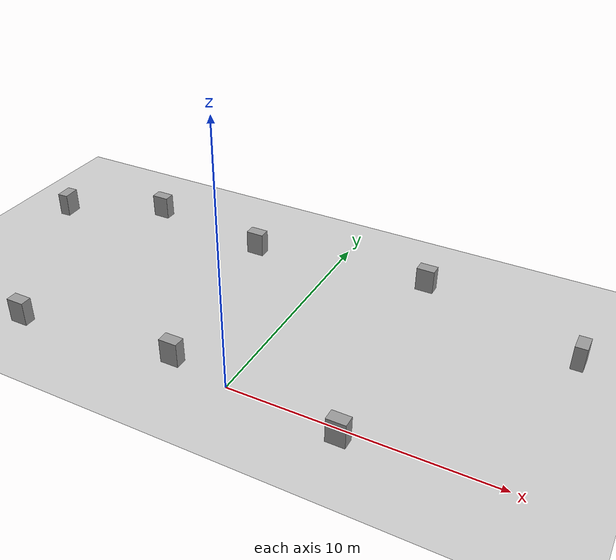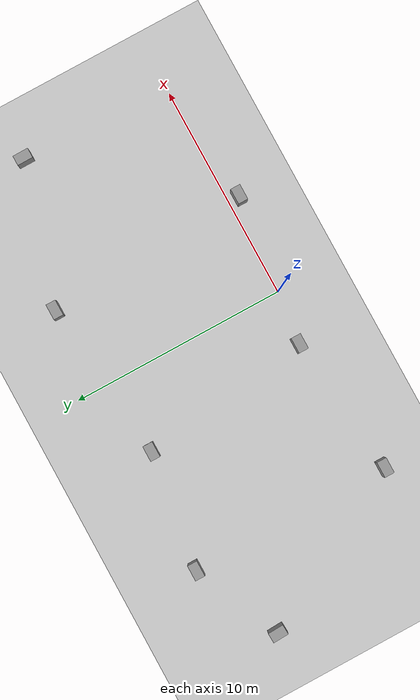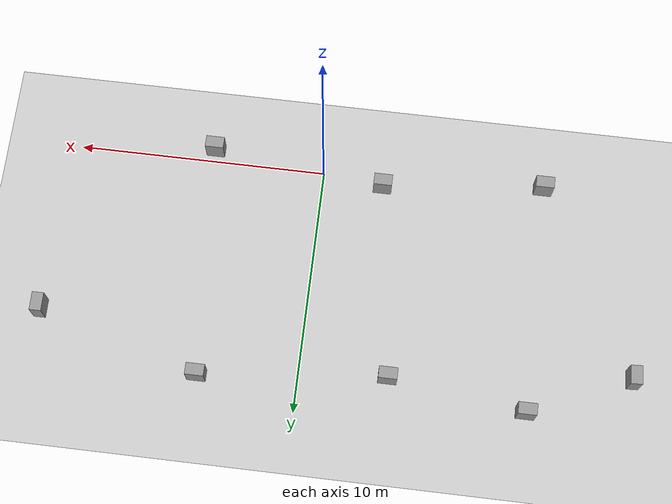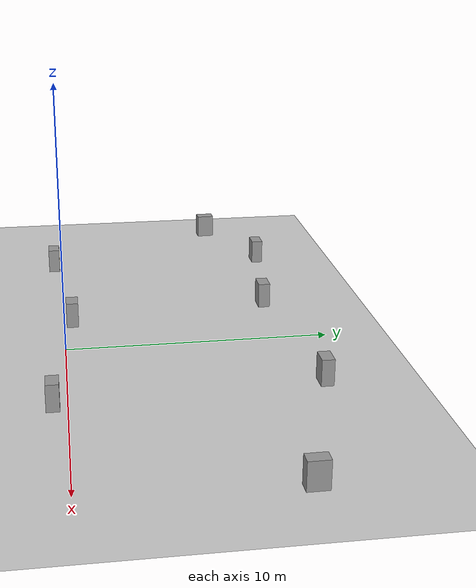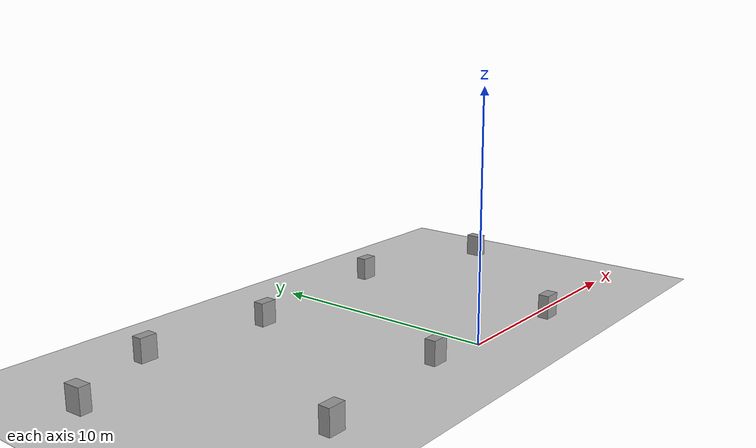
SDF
<sdf version="1.6">
 <world name="track_levine">
  <scene><ambient>0.5 0.5 0.5 1</ambient><shadows>0</shadows><background>0.7 0.7 0.7 1</background></scene>
  <light name="sun" type="directional">
   <pose>0 0 10 0 -0 0</pose>
   <diffuse>0.8 0.8 0.8 1</diffuse>
   <specular>0.1 0.1 0.1 1</specular>
   <attenuation>
    <range>1000</range>
    <constant>0.9</constant>
    <linear>0.01</linear>
    <quadratic>0.001</quadratic>
   </attenuation>
   <direction>-0.5 0.5 -1</direction>
  </light>
  <light name="Light 1" type="point">
   <pose>0 0 15 0 -0 0</pose>
   <diffuse>0.9 0.9 0.9 1</diffuse>
   <specular>0.1 0.1 0.1 1</specular>
   <attenuation>
    <constant>0.5</constant>
    <linear>0.01</linear>
    <quadratic>0</quadratic>
    <range>50</range>
   </attenuation>
   <direction>0 0 -1</direction>
   <cast_shadows>0</cast_shadows>
  </light>
  <model name="ground_plane">
   <static>1</static>
   <link name="link">
    <collision name="collision">
     <geometry><plane><normal>0 0 1</normal><size>150 150</size></plane></geometry>
     <surface><friction><ode><mu>100</mu><mu2>50</mu2></ode></friction></surface>
    </collision>
    <visual name="visual">
     <cast_shadows>0</cast_shadows>
     <geometry><plane><normal>0 0 1</normal><size>150 150</size></plane></geometry>
     <material>
      <script><uri>file://media/materials/scripts/gazebo.material</uri><name>Gazebo/Grey</name></script>
     </material>
    </visual>
   </link>
  </model>
  <gravity>0 0 -9.8</gravity>
  <magnetic_field>6e-06 2.3e-05 -4.2e-05</magnetic_field>
  <atmosphere type="adiabatic"/>
  <physics name="default_physics" default="0" type="ode">
   <max_step_size>0.001</max_step_size>
   <real_time_factor>1</real_time_factor>
   <real_time_update_rate>1000</real_time_update_rate>
  </physics>
  <spherical_coordinates>
   <surface_model>EARTH_WGS84</surface_model>
   <latitude_deg>0</latitude_deg>
   <longitude_deg>0</longitude_deg>
   <elevation>0</elevation>
   <heading_deg>0</heading_deg>
  </spherical_coordinates>
  <model name="unit_box_0_clone_clone_0">
   <link name="link">
    <inertial>
     <mass>1.01857</mass>
     <inertia>
      <ixx>0.172942</ixx>
      <ixy>0</ixy>
      <ixz>0</ixz>
      <iyy>0.169761</iyy>
      <iyz>0</iyz>
      <izz>0.172942</izz>
     </inertia>
    </inertial>
    <visual name="visual">
     <geometry><box><size>0.735947 0.462948 1</size></box></geometry>
     <material>
      <script><name>Gazebo/Grey</name><uri>file://media/materials/scripts/gazebo.material</uri></script>
      <ambient>0.3 0.3 0.3 1</ambient>
      <diffuse>0.7 0.7 0.7 1</diffuse>
      <specular>0.01 0.01 0.01 1</specular>
      <emissive>0 0 0 1</emissive>
     </material>
    </visual>
    <collision name="collision">
     <geometry><box><size>0.735947 0.462948 1</size></box></geometry>
     <surface>
      <friction>
       <ode><mu>1</mu><mu2>1</mu2><fdir1>0 0 0</fdir1><slip1>0</slip1><slip2>0</slip2></ode>
       <torsional>
        <coefficient>1</coefficient>
        <patch_radius>0</patch_radius>
        <surface_radius>0</surface_radius>
        <use_patch_radius>1</use_patch_radius>
        <ode><slip>0</slip></ode>
       </torsional>
      </friction>
      <bounce><restitution_coefficient>0</restitution_coefficient><threshold>1e+06</threshold></bounce>
      <contact>
       <collide_without_contact>0</collide_without_contact>
       <collide_without_contact_bitmask>1</collide_without_contact_bitmask>
       <collide_bitmask>1</collide_bitmask>
       <ode>
        <soft_cfm>0</soft_cfm>
        <soft_erp>0.2</soft_erp>
        <kp>1e+13</kp>
        <kd>1</kd>
        <max_vel>0.01</max_vel>
        <min_depth>0</min_depth>
       </ode>
       <bullet>
        <split_impulse>1</split_impulse>
        <split_impulse_penetration_threshold>-0.01</split_impulse_penetration_threshold>
        <soft_cfm>0</soft_cfm>
        <soft_erp>0.2</soft_erp>
        <kp>1e+13</kp>
        <kd>1</kd>
       </bullet>
      </contact>
     </surface>
    </collision>
   </link>
   <static>0</static>
   <pose>-8.91728 8.95531 0.5 0 0 -4.1e-05</pose>
  </model>
  <model name="unit_box_0_clone_clone_0_clone">
   <link name="link">
    <inertial>
     <mass>1.01857</mass>
     <inertia>
      <ixx>0.172942</ixx>
      <ixy>0</ixy>
      <ixz>0</ixz>
      <iyy>0.169761</iyy>
      <iyz>0</iyz>
      <izz>0.172942</izz>
     </inertia>
    </inertial>
    <visual name="visual">
     <geometry><box><size>0.735947 0.462948 1</size></box></geometry>
     <material>
      <script><name>Gazebo/Grey</name><uri>file://media/materials/scripts/gazebo.material</uri></script>
      <ambient>0.3 0.3 0.3 1</ambient>
      <diffuse>0.7 0.7 0.7 1</diffuse>
      <specular>0.01 0.01 0.01 1</specular>
      <emissive>0 0 0 1</emissive>
     </material>
    </visual>
    <collision name="collision">
     <geometry><box><size>0.735947 0.462948 1</size></box></geometry>
     <surface>
      <friction>
       <ode><mu>1</mu><mu2>1</mu2><fdir1>0 0 0</fdir1><slip1>0</slip1><slip2>0</slip2></ode>
       <torsional>
        <coefficient>1</coefficient>
        <patch_radius>0</patch_radius>
        <surface_radius>0</surface_radius>
        <use_patch_radius>1</use_patch_radius>
        <ode><slip>0</slip></ode>
       </torsional>
      </friction>
      <bounce><restitution_coefficient>0</restitution_coefficient><threshold>1e+06</threshold></bounce>
      <contact>
       <collide_without_contact>0</collide_without_contact>
       <collide_without_contact_bitmask>1</collide_without_contact_bitmask>
       <collide_bitmask>1</collide_bitmask>
       <ode>
        <soft_cfm>0</soft_cfm>
        <soft_erp>0.2</soft_erp>
        <kp>1e+13</kp>
        <kd>1</kd>
        <max_vel>0.01</max_vel>
        <min_depth>0</min_depth>
       </ode>
       <bullet>
        <split_impulse>1</split_impulse>
        <split_impulse_penetration_threshold>-0.01</split_impulse_penetration_threshold>
        <soft_cfm>0</soft_cfm>
        <soft_erp>0.2</soft_erp>
        <kp>1e+13</kp>
        <kd>1</kd>
       </bullet>
      </contact>
     </surface>
    </collision>
   </link>
   <static>0</static>
   <pose>4.51127 -0.497247 0.499996 5e-06 -8e-06 9.5e-05</pose>
  </model>
  <model name="unit_box_0_clone_clone_0_clone_clone">
   <link name="link">
    <inertial>
     <mass>1.01857</mass>
     <inertia>
      <ixx>0.172942</ixx>
      <ixy>0</ixy>
      <ixz>0</ixz>
      <iyy>0.169761</iyy>
      <iyz>0</iyz>
      <izz>0.172942</izz>
     </inertia>
    </inertial>
    <visual name="visual">
     <geometry><box><size>0.735947 0.462948 1</size></box></geometry>
     <material>
      <script><name>Gazebo/Grey</name><uri>file://media/materials/scripts/gazebo.material</uri></script>
      <ambient>0.3 0.3 0.3 1</ambient>
      <diffuse>0.7 0.7 0.7 1</diffuse>
      <specular>0.01 0.01 0.01 1</specular>
      <emissive>0 0 0 1</emissive>
     </material>
    </visual>
    <collision name="collision">
     <geometry><box><size>0.735947 0.462948 1</size></box></geometry>
     <surface>
      <friction>
       <ode><mu>1</mu><mu2>1</mu2><fdir1>0 0 0</fdir1><slip1>0</slip1><slip2>0</slip2></ode>
       <torsional>
        <coefficient>1</coefficient>
        <patch_radius>0</patch_radius>
        <surface_radius>0</surface_radius>
        <use_patch_radius>1</use_patch_radius>
        <ode><slip>0</slip></ode>
       </torsional>
      </friction>
      <bounce><restitution_coefficient>0</restitution_coefficient><threshold>1e+06</threshold></bounce>
      <contact>
       <collide_without_contact>0</collide_without_contact>
       <collide_without_contact_bitmask>1</collide_without_contact_bitmask>
       <collide_bitmask>1</collide_bitmask>
       <ode>
        <soft_cfm>0</soft_cfm>
        <soft_erp>0.2</soft_erp>
        <kp>1e+13</kp>
        <kd>1</kd>
        <max_vel>0.01</max_vel>
        <min_depth>0</min_depth>
       </ode>
       <bullet>
        <split_impulse>1</split_impulse>
        <split_impulse_penetration_threshold>-0.01</split_impulse_penetration_threshold>
        <soft_cfm>0</soft_cfm>
        <soft_erp>0.2</soft_erp>
        <kp>1e+13</kp>
        <kd>1</kd>
       </bullet>
      </contact>
     </surface>
    </collision>
   </link>
   <static>0</static>
   <pose>3.92268 8.95043 0.499996 5e-06 -8e-06 8.3e-05</pose>
  </model>
  <model name="unit_box_0_clone_clone_0_clone_clone_clone">
   <link name="link">
    <inertial>
     <mass>1.01857</mass>
     <inertia>
      <ixx>0.172942</ixx>
      <ixy>0</ixy>
      <ixz>0</ixz>
      <iyy>0.169761</iyy>
      <iyz>0</iyz>
      <izz>0.172942</izz>
     </inertia>
    </inertial>
    <visual name="visual">
     <geometry><box><size>0.735947 0.462948 1</size></box></geometry>
     <material>
      <script><name>Gazebo/Grey</name><uri>file://media/materials/scripts/gazebo.material</uri></script>
      <ambient>0.3 0.3 0.3 1</ambient>
      <diffuse>0.7 0.7 0.7 1</diffuse>
      <specular>0.01 0.01 0.01 1</specular>
      <emissive>0 0 0 1</emissive>
     </material>
    </visual>
    <collision name="collision">
     <geometry><box><size>0.735947 0.462948 1</size></box></geometry>
     <surface>
      <friction>
       <ode><mu>1</mu><mu2>1</mu2><fdir1>0 0 0</fdir1><slip1>0</slip1><slip2>0</slip2></ode>
       <torsional>
        <coefficient>1</coefficient>
        <patch_radius>0</patch_radius>
        <surface_radius>0</surface_radius>
        <use_patch_radius>1</use_patch_radius>
        <ode><slip>0</slip></ode>
       </torsional>
      </friction>
      <bounce><restitution_coefficient>0</restitution_coefficient><threshold>1e+06</threshold></bounce>
      <contact>
       <collide_without_contact>0</collide_without_contact>
       <collide_without_contact_bitmask>1</collide_without_contact_bitmask>
       <collide_bitmask>1</collide_bitmask>
       <ode>
        <soft_cfm>0</soft_cfm>
        <soft_erp>0.2</soft_erp>
        <kp>1e+13</kp>
        <kd>1</kd>
        <max_vel>0.01</max_vel>
        <min_depth>0</min_depth>
       </ode>
       <bullet>
        <split_impulse>1</split_impulse>
        <split_impulse_penetration_threshold>-0.01</split_impulse_penetration_threshold>
        <soft_cfm>0</soft_cfm>
        <soft_erp>0.2</soft_erp>
        <kp>1e+13</kp>
        <kd>1</kd>
       </bullet>
      </contact>
     </surface>
    </collision>
   </link>
   <static>0</static>
   <pose>-3.48307 8.19626 0.499999 3e-06 -0 -2.7e-05</pose>
  </model>
  <model name="unit_box_0_clone_clone_0_clone_clone_clone_0">
   <link name="link">
    <inertial>
     <mass>1.01857</mass>
     <inertia>
      <ixx>0.172942</ixx>
      <ixy>0</ixy>
      <ixz>0</ixz>
      <iyy>0.169761</iyy>
      <iyz>0</iyz>
      <izz>0.172942</izz>
     </inertia>
    </inertial>
    <visual name="visual">
     <geometry><box><size>0.735947 0.462948 1</size></box></geometry>
     <material>
      <script><name>Gazebo/Grey</name><uri>file://media/materials/scripts/gazebo.material</uri></script>
      <ambient>0.3 0.3 0.3 1</ambient>
      <diffuse>0.7 0.7 0.7 1</diffuse>
      <specular>0.01 0.01 0.01 1</specular>
      <emissive>0 0 0 1</emissive>
     </material>
    </visual>
    <collision name="collision">
     <geometry><box><size>0.735947 0.462948 1</size></box></geometry>
     <surface>
      <friction>
       <ode><mu>1</mu><mu2>1</mu2><fdir1>0 0 0</fdir1><slip1>0</slip1><slip2>0</slip2></ode>
       <torsional>
        <coefficient>1</coefficient>
        <patch_radius>0</patch_radius>
        <surface_radius>0</surface_radius>
        <use_patch_radius>1</use_patch_radius>
        <ode><slip>0</slip></ode>
       </torsional>
      </friction>
      <bounce><restitution_coefficient>0</restitution_coefficient><threshold>1e+06</threshold></bounce>
      <contact>
       <collide_without_contact>0</collide_without_contact>
       <collide_without_contact_bitmask>1</collide_without_contact_bitmask>
       <collide_bitmask>1</collide_bitmask>
       <ode>
        <soft_cfm>0</soft_cfm>
        <soft_erp>0.2</soft_erp>
        <kp>1e+13</kp>
        <kd>1</kd>
        <max_vel>0.01</max_vel>
        <min_depth>0</min_depth>
       </ode>
       <bullet>
        <split_impulse>1</split_impulse>
        <split_impulse_penetration_threshold>-0.01</split_impulse_penetration_threshold>
        <soft_cfm>0</soft_cfm>
        <soft_erp>0.2</soft_erp>
        <kp>1e+13</kp>
        <kd>1</kd>
       </bullet>
      </contact>
     </surface>
    </collision>
   </link>
   <static>0</static>
   <pose>10.4564 6.99217 0.5 0 -0 1.57839</pose>
  </model>
  <model name="unit_box_0_clone_clone_0_clone_clone_clone_1">
   <link name="link">
    <inertial>
     <mass>1.01857</mass>
     <inertia>
      <ixx>0.172942</ixx>
      <ixy>0</ixy>
      <ixz>0</ixz>
      <iyy>0.169761</iyy>
      <iyz>0</iyz>
      <izz>0.172942</izz>
     </inertia>
    </inertial>
    <visual name="visual">
     <geometry><box><size>0.735947 0.462948 1</size></box></geometry>
     <material>
      <script><name>Gazebo/Grey</name><uri>file://media/materials/scripts/gazebo.material</uri></script>
      <ambient>0.3 0.3 0.3 1</ambient>
      <diffuse>0.7 0.7 0.7 1</diffuse>
      <specular>0.01 0.01 0.01 1</specular>
      <emissive>0 0 0 1</emissive>
     </material>
    </visual>
    <collision name="collision">
     <geometry><box><size>0.735947 0.462948 1</size></box></geometry>
     <surface>
      <friction>
       <ode><mu>1</mu><mu2>1</mu2><fdir1>0 0 0</fdir1><slip1>0</slip1><slip2>0</slip2></ode>
       <torsional>
        <coefficient>1</coefficient>
        <patch_radius>0</patch_radius>
        <surface_radius>0</surface_radius>
        <use_patch_radius>1</use_patch_radius>
        <ode><slip>0</slip></ode>
       </torsional>
      </friction>
      <bounce><restitution_coefficient>0</restitution_coefficient><threshold>1e+06</threshold></bounce>
      <contact>
       <collide_without_contact>0</collide_without_contact>
       <collide_without_contact_bitmask>1</collide_without_contact_bitmask>
       <collide_bitmask>1</collide_bitmask>
       <ode>
        <soft_cfm>0</soft_cfm>
        <soft_erp>0.2</soft_erp>
        <kp>1e+13</kp>
        <kd>1</kd>
        <max_vel>0.01</max_vel>
        <min_depth>0</min_depth>
       </ode>
       <bullet>
        <split_impulse>1</split_impulse>
        <split_impulse_penetration_threshold>-0.01</split_impulse_penetration_threshold>
        <soft_cfm>0</soft_cfm>
        <soft_erp>0.2</soft_erp>
        <kp>1e+13</kp>
        <kd>1</kd>
       </bullet>
      </contact>
     </surface>
    </collision>
   </link>
   <static>0</static>
   <pose>-12.9759 7.14111 0.5 0 -0 1.61992</pose>
  </model>
  <model name="unit_box_0_clone_clone_0_clone_clone_clone_2">
   <link name="link">
    <inertial>
     <mass>1.01857</mass>
     <inertia>
      <ixx>0.172942</ixx>
      <ixy>0</ixy>
      <ixz>0</ixz>
      <iyy>0.169761</iyy>
      <iyz>0</iyz>
      <izz>0.172942</izz>
     </inertia>
    </inertial>
    <visual name="visual">
     <geometry><box><size>0.735947 0.462948 1</size></box></geometry>
     <material>
      <script><name>Gazebo/Grey</name><uri>file://media/materials/scripts/gazebo.material</uri></script>
      <ambient>0.3 0.3 0.3 1</ambient>
      <diffuse>0.7 0.7 0.7 1</diffuse>
      <specular>0.01 0.01 0.01 1</specular>
      <emissive>0 0 0 1</emissive>
     </material>
    </visual>
    <collision name="collision">
     <geometry><box><size>0.735947 0.462948 1</size></box></geometry>
     <surface>
      <friction>
       <ode><mu>1</mu><mu2>1</mu2><fdir1>0 0 0</fdir1><slip1>0</slip1><slip2>0</slip2></ode>
       <torsional>
        <coefficient>1</coefficient>
        <patch_radius>0</patch_radius>
        <surface_radius>0</surface_radius>
        <use_patch_radius>1</use_patch_radius>
        <ode><slip>0</slip></ode>
       </torsional>
      </friction>
      <bounce><restitution_coefficient>0</restitution_coefficient><threshold>1e+06</threshold></bounce>
      <contact>
       <collide_without_contact>0</collide_without_contact>
       <collide_without_contact_bitmask>1</collide_without_contact_bitmask>
       <collide_bitmask>1</collide_bitmask>
       <ode>
        <soft_cfm>0</soft_cfm>
        <soft_erp>0.2</soft_erp>
        <kp>1e+13</kp>
        <kd>1</kd>
        <max_vel>0.01</max_vel>
        <min_depth>0</min_depth>
       </ode>
       <bullet>
        <split_impulse>1</split_impulse>
        <split_impulse_penetration_threshold>-0.01</split_impulse_penetration_threshold>
        <soft_cfm>0</soft_cfm>
        <soft_erp>0.2</soft_erp>
        <kp>1e+13</kp>
        <kd>1</kd>
       </bullet>
      </contact>
     </surface>
    </collision>
   </link>
   <static>0</static>
   <pose>-8.9306 -0.358891 0.5 0 -0 3.9e-05</pose>
  </model>
  <model name="unit_box_0_clone_clone_0_clone_clone_clone_3">
   <link name="link">
    <inertial>
     <mass>1.01857</mass>
     <inertia>
      <ixx>0.172942</ixx>
      <ixy>0</ixy>
      <ixz>0</ixz>
      <iyy>0.169761</iyy>
      <iyz>0</iyz>
      <izz>0.172942</izz>
     </inertia>
    </inertial>
    <visual name="visual">
     <geometry><box><size>0.735947 0.462948 1</size></box></geometry>
     <material>
      <script><name>Gazebo/Grey</name><uri>file://media/materials/scripts/gazebo.material</uri></script>
      <ambient>0.3 0.3 0.3 1</ambient>
      <diffuse>0.7 0.7 0.7 1</diffuse>
      <specular>0.01 0.01 0.01 1</specular>
      <emissive>0 0 0 1</emissive>
     </material>
    </visual>
    <collision name="collision">
     <geometry><box><size>0.735947 0.462948 1</size></box></geometry>
     <surface>
      <friction>
       <ode><mu>1</mu><mu2>1</mu2><fdir1>0 0 0</fdir1><slip1>0</slip1><slip2>0</slip2></ode>
       <torsional>
        <coefficient>1</coefficient>
        <patch_radius>0</patch_radius>
        <surface_radius>0</surface_radius>
        <use_patch_radius>1</use_patch_radius>
        <ode><slip>0</slip></ode>
       </torsional>
      </friction>
      <bounce><restitution_coefficient>0</restitution_coefficient><threshold>1e+06</threshold></bounce>
      <contact>
       <collide_without_contact>0</collide_without_contact>
       <collide_without_contact_bitmask>1</collide_without_contact_bitmask>
       <collide_bitmask>1</collide_bitmask>
       <ode>
        <soft_cfm>0</soft_cfm>
        <soft_erp>0.2</soft_erp>
        <kp>1e+13</kp>
        <kd>1</kd>
        <max_vel>0.01</max_vel>
        <min_depth>0</min_depth>
       </ode>
       <bullet>
        <split_impulse>1</split_impulse>
        <split_impulse_penetration_threshold>-0.01</split_impulse_penetration_threshold>
        <soft_cfm>0</soft_cfm>
        <soft_erp>0.2</soft_erp>
        <kp>1e+13</kp>
        <kd>1</kd>
       </bullet>
      </contact>
     </surface>
    </collision>
   </link>
   <static>0</static>
   <pose>-2.44358 0.311851 0.5 5e-06 -2e-06 -3.6e-05</pose>
  </model>
 </world>
</sdf>
